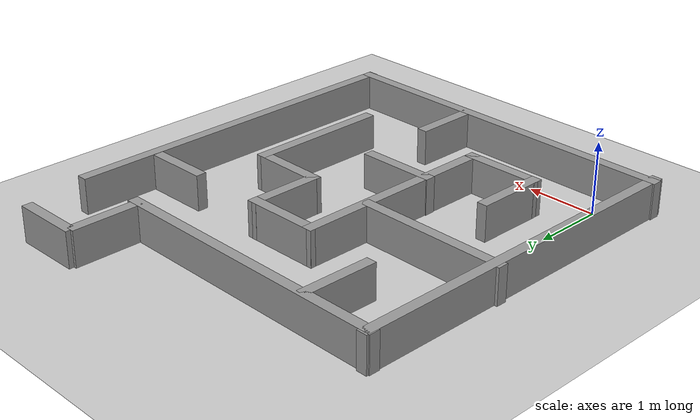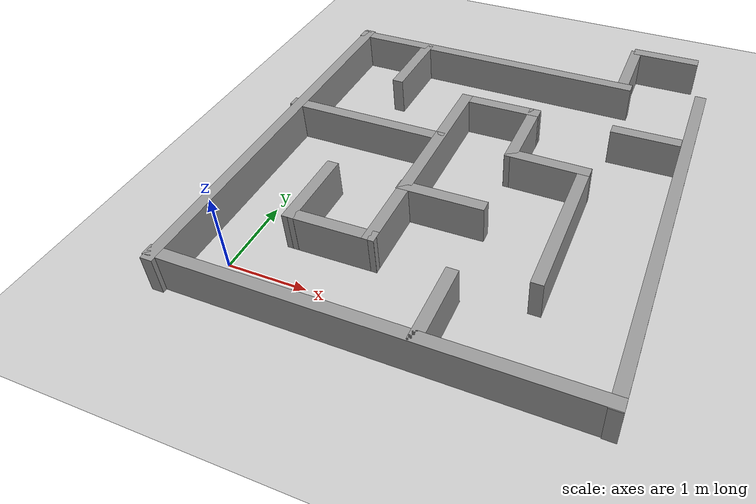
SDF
<sdf version='1.4'>
  <world name='default'>
    <!-- A global light source -->
    <include>
      <uri>model://sun</uri>
    </include>

    <!-- A ground plane -->
    <include>
      <uri>model://ground_plane</uri>
    </include>

    <physics type="ode">
      <real_time_update_rate>1000.0</real_time_update_rate>
      <max_step_size>0.001</max_step_size>
      <real_time_factor>1</real_time_factor>
      <ode>
        <solver>
          <type>quick</type>
          <iters>150</iters>
          <precon_iters>0</precon_iters>
          <sor>1.400000</sor>
          <use_dynamic_moi_rescaling>1</use_dynamic_moi_rescaling>
        </solver>
        <constraints>
          <cfm>0.00001</cfm>
          <erp>0.2</erp>
          <contact_max_correcting_vel>2000.000000</contact_max_correcting_vel>
          <contact_surface_layer>0.01000</contact_surface_layer>
        </constraints>
      </ode>
    </physics>

    <!-- Load world -->
    <include>
      <uri>model://short_maze</uri>
    </include>

    <scene>
      <ambient>0.4 0.4 0.4 1</ambient>
      <background>0.7 0.7 0.7 1</background>
      <shadows>true</shadows>
    </scene>

    <gui fullscreen='0'>
      <camera name='user_camera'>
        <pose>0.8 0.0 12.0 0 1.5708 0</pose>
        <view_controller>orbit</view_controller>
      </camera>
    </gui>
  </world>
</sdf>

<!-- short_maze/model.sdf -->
<sdf version='1.7'>
  <model name='short_maze'>
    <pose> 2.0 4.5 0 0 -0 1.57</pose>
    <link name='Wall_1'>
      <pose>-2.5 2.5 0 0 -0 0</pose>
      <self_collide>0</self_collide>
      <enable_wind>0</enable_wind>
      <kinematic>0</kinematic>
      <gravity>1</gravity>
      <inertial>
        <mass>1</mass>
        <pose>0 0 0 0 -0 0</pose>
        <inertia>
          <ixx>1</ixx>
          <ixy>0</ixy>
          <ixz>0</ixz>
          <iyy>1</iyy>
          <iyz>0</iyz>
          <izz>1</izz>
        </inertia>
      </inertial>
      <visual name='Wall_1_Visual'>
        <pose>0 0 0.25 0 -0 0</pose>
        <geometry>
          <box>
            <size>5.21009 0.15 0.5</size>
          </box>
        </geometry>
        <material>
          <script>
            <uri>file://media/materials/scripts/gazebo.material</uri>
            <name>Gazebo/Grey</name>
          </script>
          <ambient>1 1 1 1</ambient>
          <shader type='pixel'>
            <normal_map>__default__</normal_map>
          </shader>
          <diffuse>0.7 0.7 0.7 1</diffuse>
          <specular>0.01 0.01 0.01 1</specular>
          <emissive>0 0 0 1</emissive>
        </material>
        <meta>
          <layer>0</layer>
        </meta>
        <transparency>0</transparency>
        <cast_shadows>1</cast_shadows>
      </visual>
      <collision name='Wall_1_Collision'>
        <laser_retro>0</laser_retro>
        <max_contacts>10</max_contacts>
        <pose>0 0 0.25 0 -0 0</pose>
        <geometry>
          <box>
            <size>5.21009 0.15 0.5</size>
          </box>
        </geometry>
        <surface>
          <friction>
            <ode>
              <mu>1</mu>
              <mu2>1</mu2>
              <fdir1>0 0 0</fdir1>
              <slip1>0</slip1>
              <slip2>0</slip2>
            </ode>
            <torsional>
              <coefficient>1</coefficient>
              <patch_radius>0</patch_radius>
              <surface_radius>0</surface_radius>
              <use_patch_radius>1</use_patch_radius>
              <ode>
                <slip>0</slip>
              </ode>
            </torsional>
          </friction>
          <bounce>
            <restitution_coefficient>0</restitution_coefficient>
            <threshold>1e+06</threshold>
          </bounce>
          <contact>
            <collide_without_contact>0</collide_without_contact>
            <collide_without_contact_bitmask>1</collide_without_contact_bitmask>
            <collide_bitmask>1</collide_bitmask>
            <ode>
              <soft_cfm>0</soft_cfm>
              <soft_erp>0.2</soft_erp>
              <kp>1e+13</kp>
              <kd>1</kd>
              <max_vel>0.01</max_vel>
              <min_depth>0</min_depth>
            </ode>
            <bullet>
              <split_impulse>1</split_impulse>
              <split_impulse_penetration_threshold>-0.01</split_impulse_penetration_threshold>
              <soft_cfm>0</soft_cfm>
              <soft_erp>0.2</soft_erp>
              <kp>1e+13</kp>
              <kd>1</kd>
            </bullet>
          </contact>
        </surface>
      </collision>
    </link>
    <link name='Wall_10'>
      <pose>-4.53996 -0.559779 0 0 -0 0</pose>
      <self_collide>0</self_collide>
      <enable_wind>0</enable_wind>
      <kinematic>0</kinematic>
      <visual name='Wall_10_Visual'>
        <pose>0 0 0.25 0 -0 0</pose>
        <geometry>
          <box>
            <size>1 0.15 0.5</size>
          </box>
        </geometry>
        <material>
          <script>
            <uri>file://media/materials/scripts/gazebo.material</uri>
            <name>Gazebo/Grey</name>
          </script>
          <ambient>1 1 1 1</ambient>
          <shader type='pixel'/>
        </material>
        <meta>
          <layer>0</layer>
        </meta>
        <transparency>0</transparency>
        <cast_shadows>1</cast_shadows>
      </visual>
      <collision name='Wall_10_Collision'>
        <laser_retro>0</laser_retro>
        <max_contacts>10</max_contacts>
        <pose>0 0 0.25 0 -0 0</pose>
        <geometry>
          <box>
            <size>1 0.15 0.5</size>
          </box>
        </geometry>
        <surface>
          <friction>
            <ode>
              <mu>1</mu>
              <mu2>1</mu2>
              <fdir1>0 0 0</fdir1>
              <slip1>0</slip1>
              <slip2>0</slip2>
            </ode>
            <torsional>
              <coefficient>1</coefficient>
              <patch_radius>0</patch_radius>
              <surface_radius>0</surface_radius>
              <use_patch_radius>1</use_patch_radius>
              <ode>
                <slip>0</slip>
              </ode>
            </torsional>
          </friction>
          <bounce>
            <restitution_coefficient>0</restitution_coefficient>
            <threshold>1e+06</threshold>
          </bounce>
          <contact>
            <collide_without_contact>0</collide_without_contact>
            <collide_without_contact_bitmask>1</collide_without_contact_bitmask>
            <collide_bitmask>1</collide_bitmask>
            <ode>
              <soft_cfm>0</soft_cfm>
              <soft_erp>0.2</soft_erp>
              <kp>1e+13</kp>
              <kd>1</kd>
              <max_vel>0.01</max_vel>
              <min_depth>0</min_depth>
            </ode>
            <bullet>
              <split_impulse>1</split_impulse>
              <split_impulse_penetration_threshold>-0.01</split_impulse_penetration_threshold>
              <soft_cfm>0</soft_cfm>
              <soft_erp>0.2</soft_erp>
              <kp>1e+13</kp>
              <kd>1</kd>
            </bullet>
          </contact>
        </surface>
      </collision>
    </link>
    <link name='Wall_23'>
      <pose>-3.47496 1.46022 0 0 -0 3.14159</pose>
      <self_collide>0</self_collide>
      <enable_wind>0</enable_wind>
      <kinematic>0</kinematic>
      <visual name='Wall_23_Visual'>
        <pose>0 0 0.25 0 -0 0</pose>
        <geometry>
          <box>
            <size>1.05 0.15 0.5</size>
          </box>
        </geometry>
        <material>
          <script>
            <uri>file://media/materials/scripts/gazebo.material</uri>
            <name>Gazebo/Grey</name>
          </script>
          <ambient>1 1 1 1</ambient>
          <shader type='pixel'/>
        </material>
        <meta>
          <layer>0</layer>
        </meta>
        <transparency>0</transparency>
        <cast_shadows>1</cast_shadows>
      </visual>
      <collision name='Wall_23_Collision'>
        <laser_retro>0</laser_retro>
        <max_contacts>10</max_contacts>
        <pose>0 0 0.25 0 -0 0</pose>
        <geometry>
          <box>
            <size>1.05 0.15 0.5</size>
          </box>
        </geometry>
        <surface>
          <friction>
            <ode>
              <mu>1</mu>
              <mu2>1</mu2>
              <fdir1>0 0 0</fdir1>
              <slip1>0</slip1>
              <slip2>0</slip2>
            </ode>
            <torsional>
              <coefficient>1</coefficient>
              <patch_radius>0</patch_radius>
              <surface_radius>0</surface_radius>
              <use_patch_radius>1</use_patch_radius>
              <ode>
                <slip>0</slip>
              </ode>
            </torsional>
          </friction>
          <bounce>
            <restitution_coefficient>0</restitution_coefficient>
            <threshold>1e+06</threshold>
          </bounce>
          <contact>
            <collide_without_contact>0</collide_without_contact>
            <collide_without_contact_bitmask>1</collide_without_contact_bitmask>
            <collide_bitmask>1</collide_bitmask>
            <ode>
              <soft_cfm>0</soft_cfm>
              <soft_erp>0.2</soft_erp>
              <kp>1e+13</kp>
              <kd>1</kd>
              <max_vel>0.01</max_vel>
              <min_depth>0</min_depth>
            </ode>
            <bullet>
              <split_impulse>1</split_impulse>
              <split_impulse_penetration_threshold>-0.01</split_impulse_penetration_threshold>
              <soft_cfm>0</soft_cfm>
              <soft_erp>0.2</soft_erp>
              <kp>1e+13</kp>
              <kd>1</kd>
            </bullet>
          </contact>
        </surface>
      </collision>
    </link>
    <link name='Wall_25'>
      <pose>-3.91996 0.960222 0 0 0 -1.5608</pose>
      <self_collide>0</self_collide>
      <enable_wind>0</enable_wind>
      <kinematic>0</kinematic>
      <visual name='Wall_25_Visual'>
        <pose>0 0 0.25 0 -0 0</pose>
        <geometry>
          <box>
            <size>1.15005 0.15 0.5</size>
          </box>
        </geometry>
        <material>
          <script>
            <uri>file://media/materials/scripts/gazebo.material</uri>
            <name>Gazebo/Grey</name>
          </script>
          <ambient>1 1 1 1</ambient>
          <shader type='pixel'/>
        </material>
        <meta>
          <layer>0</layer>
        </meta>
        <transparency>0</transparency>
        <cast_shadows>1</cast_shadows>
      </visual>
      <collision name='Wall_25_Collision'>
        <laser_retro>0</laser_retro>
        <max_contacts>10</max_contacts>
        <pose>0 0 0.25 0 -0 0</pose>
        <geometry>
          <box>
            <size>1.15005 0.15 0.5</size>
          </box>
        </geometry>
        <surface>
          <friction>
            <ode>
              <mu>1</mu>
              <mu2>1</mu2>
              <fdir1>0 0 0</fdir1>
              <slip1>0</slip1>
              <slip2>0</slip2>
            </ode>
            <torsional>
              <coefficient>1</coefficient>
              <patch_radius>0</patch_radius>
              <surface_radius>0</surface_radius>
              <use_patch_radius>1</use_patch_radius>
              <ode>
                <slip>0</slip>
              </ode>
            </torsional>
          </friction>
          <bounce>
            <restitution_coefficient>0</restitution_coefficient>
            <threshold>1e+06</threshold>
          </bounce>
          <contact>
            <collide_without_contact>0</collide_without_contact>
            <collide_without_contact_bitmask>1</collide_without_contact_bitmask>
            <collide_bitmask>1</collide_bitmask>
            <ode>
              <soft_cfm>0</soft_cfm>
              <soft_erp>0.2</soft_erp>
              <kp>1e+13</kp>
              <kd>1</kd>
              <max_vel>0.01</max_vel>
              <min_depth>0</min_depth>
            </ode>
            <bullet>
              <split_impulse>1</split_impulse>
              <split_impulse_penetration_threshold>-0.01</split_impulse_penetration_threshold>
              <soft_cfm>0</soft_cfm>
              <soft_erp>0.2</soft_erp>
              <kp>1e+13</kp>
              <kd>1</kd>
            </bullet>
          </contact>
        </surface>
      </collision>
    </link>
    <link name='Wall_26'>
      <pose>-2.48996 0.460222 0 0 -0 0</pose>
      <self_collide>0</self_collide>
      <enable_wind>0</enable_wind>
      <kinematic>0</kinematic>
      <visual name='Wall_26_Visual'>
        <pose>0 0 0.25 0 -0 0</pose>
        <geometry>
          <box>
            <size>3 0.15 0.5</size>
          </box>
        </geometry>
        <material>
          <script>
            <uri>file://media/materials/scripts/gazebo.material</uri>
            <name>Gazebo/Grey</name>
          </script>
          <ambient>1 1 1 1</ambient>
          <shader type='pixel'/>
        </material>
        <meta>
          <layer>0</layer>
        </meta>
        <transparency>0</transparency>
        <cast_shadows>1</cast_shadows>
      </visual>
      <collision name='Wall_26_Collision'>
        <laser_retro>0</laser_retro>
        <max_contacts>10</max_contacts>
        <pose>0 0 0.25 0 -0 0</pose>
        <geometry>
          <box>
            <size>3 0.15 0.5</size>
          </box>
        </geometry>
        <surface>
          <friction>
            <ode>
              <mu>1</mu>
              <mu2>1</mu2>
              <fdir1>0 0 0</fdir1>
              <slip1>0</slip1>
              <slip2>0</slip2>
            </ode>
            <torsional>
              <coefficient>1</coefficient>
              <patch_radius>0</patch_radius>
              <surface_radius>0</surface_radius>
              <use_patch_radius>1</use_patch_radius>
              <ode>
                <slip>0</slip>
              </ode>
            </torsional>
          </friction>
          <bounce>
            <restitution_coefficient>0</restitution_coefficient>
            <threshold>1e+06</threshold>
          </bounce>
          <contact>
            <collide_without_contact>0</collide_without_contact>
            <collide_without_contact_bitmask>1</collide_without_contact_bitmask>
            <collide_bitmask>1</collide_bitmask>
            <ode>
              <soft_cfm>0</soft_cfm>
              <soft_erp>0.2</soft_erp>
              <kp>1e+13</kp>
              <kd>1</kd>
              <max_vel>0.01</max_vel>
              <min_depth>0</min_depth>
            </ode>
            <bullet>
              <split_impulse>1</split_impulse>
              <split_impulse_penetration_threshold>-0.01</split_impulse_penetration_threshold>
              <soft_cfm>0</soft_cfm>
              <soft_erp>0.2</soft_erp>
              <kp>1e+13</kp>
              <kd>1</kd>
            </bullet>
          </contact>
        </surface>
      </collision>
    </link>
    <link name='Wall_27'>
      <pose>-1.05996 -0.024778 0 0 0 -1.56049</pose>
      <self_collide>0</self_collide>
      <enable_wind>0</enable_wind>
      <kinematic>0</kinematic>
      <visual name='Wall_27_Visual'>
        <pose>0 0 0.25 0 -0 0</pose>
        <geometry>
          <box>
            <size>1.12005 0.15 0.5</size>
          </box>
        </geometry>
        <material>
          <script>
            <uri>file://media/materials/scripts/gazebo.material</uri>
            <name>Gazebo/Grey</name>
          </script>
          <ambient>1 1 1 1</ambient>
          <shader type='pixel'/>
        </material>
        <meta>
          <layer>0</layer>
        </meta>
        <transparency>0</transparency>
        <cast_shadows>1</cast_shadows>
      </visual>
      <collision name='Wall_27_Collision'>
        <laser_retro>0</laser_retro>
        <max_contacts>10</max_contacts>
        <pose>0 0 0.25 0 -0 0</pose>
        <geometry>
          <box>
            <size>1.12005 0.15 0.5</size>
          </box>
        </geometry>
        <surface>
          <friction>
            <ode>
              <mu>1</mu>
              <mu2>1</mu2>
              <fdir1>0 0 0</fdir1>
              <slip1>0</slip1>
              <slip2>0</slip2>
            </ode>
            <torsional>
              <coefficient>1</coefficient>
              <patch_radius>0</patch_radius>
              <surface_radius>0</surface_radius>
              <use_patch_radius>1</use_patch_radius>
              <ode>
                <slip>0</slip>
              </ode>
            </torsional>
          </friction>
          <bounce>
            <restitution_coefficient>0</restitution_coefficient>
            <threshold>1e+06</threshold>
          </bounce>
          <contact>
            <collide_without_contact>0</collide_without_contact>
            <collide_without_contact_bitmask>1</collide_without_contact_bitmask>
            <collide_bitmask>1</collide_bitmask>
            <ode>
              <soft_cfm>0</soft_cfm>
              <soft_erp>0.2</soft_erp>
              <kp>1e+13</kp>
              <kd>1</kd>
              <max_vel>0.01</max_vel>
              <min_depth>0</min_depth>
            </ode>
            <bullet>
              <split_impulse>1</split_impulse>
              <split_impulse_penetration_threshold>-0.01</split_impulse_penetration_threshold>
              <soft_cfm>0</soft_cfm>
              <soft_erp>0.2</soft_erp>
              <kp>1e+13</kp>
              <kd>1</kd>
            </bullet>
          </contact>
        </surface>
      </collision>
    </link>
    <link name='Wall_28'>
      <pose>-1.51996 -0.509778 0 0 -0 3.14159</pose>
      <self_collide>0</self_collide>
      <enable_wind>0</enable_wind>
      <kinematic>0</kinematic>
      <visual name='Wall_28_Visual'>
        <pose>0 0 0.25 0 -0 0</pose>
        <geometry>
          <box>
            <size>1.08 0.15 0.5</size>
          </box>
        </geometry>
        <material>
          <script>
            <uri>file://media/materials/scripts/gazebo.material</uri>
            <name>Gazebo/Grey</name>
          </script>
          <ambient>1 1 1 1</ambient>
          <shader type='pixel'/>
        </material>
        <meta>
          <layer>0</layer>
        </meta>
        <transparency>0</transparency>
        <cast_shadows>1</cast_shadows>
      </visual>
      <collision name='Wall_28_Collision'>
        <laser_retro>0</laser_retro>
        <max_contacts>10</max_contacts>
        <pose>0 0 0.25 0 -0 0</pose>
        <geometry>
          <box>
            <size>1.08 0.15 0.5</size>
          </box>
        </geometry>
        <surface>
          <friction>
            <ode>
              <mu>1</mu>
              <mu2>1</mu2>
              <fdir1>0 0 0</fdir1>
              <slip1>0</slip1>
              <slip2>0</slip2>
            </ode>
            <torsional>
              <coefficient>1</coefficient>
              <patch_radius>0</patch_radius>
              <surface_radius>0</surface_radius>
              <use_patch_radius>1</use_patch_radius>
              <ode>
                <slip>0</slip>
              </ode>
            </torsional>
          </friction>
          <bounce>
            <restitution_coefficient>0</restitution_coefficient>
            <threshold>1e+06</threshold>
          </bounce>
          <contact>
            <collide_without_contact>0</collide_without_contact>
            <collide_without_contact_bitmask>1</collide_without_contact_bitmask>
            <collide_bitmask>1</collide_bitmask>
            <ode>
              <soft_cfm>0</soft_cfm>
              <soft_erp>0.2</soft_erp>
              <kp>1e+13</kp>
              <kd>1</kd>
              <max_vel>0.01</max_vel>
              <min_depth>0</min_depth>
            </ode>
            <bullet>
              <split_impulse>1</split_impulse>
              <split_impulse_penetration_threshold>-0.01</split_impulse_penetration_threshold>
              <soft_cfm>0</soft_cfm>
              <soft_erp>0.2</soft_erp>
              <kp>1e+13</kp>
              <kd>1</kd>
            </bullet>
          </contact>
        </surface>
      </collision>
    </link>
    <link name='Wall_29'>
      <pose>-1.98996 -0.974778 0 0 0 -1.58155</pose>
      <self_collide>0</self_collide>
      <enable_wind>0</enable_wind>
      <kinematic>0</kinematic>
      <visual name='Wall_29_Visual'>
        <pose>0 0 0.25 0 -0 0</pose>
        <geometry>
          <box>
            <size>1.08005 0.15 0.5</size>
          </box>
        </geometry>
        <material>
          <script>
            <uri>file://media/materials/scripts/gazebo.material</uri>
            <name>Gazebo/Grey</name>
          </script>
          <ambient>1 1 1 1</ambient>
          <shader type='pixel'/>
        </material>
        <meta>
          <layer>0</layer>
        </meta>
        <transparency>0</transparency>
        <cast_shadows>1</cast_shadows>
      </visual>
      <collision name='Wall_29_Collision'>
        <laser_retro>0</laser_retro>
        <max_contacts>10</max_contacts>
        <pose>0 0 0.25 0 -0 0</pose>
        <geometry>
          <box>
            <size>1.08005 0.15 0.5</size>
          </box>
        </geometry>
        <surface>
          <friction>
            <ode>
              <mu>1</mu>
              <mu2>1</mu2>
              <fdir1>0 0 0</fdir1>
              <slip1>0</slip1>
              <slip2>0</slip2>
            </ode>
            <torsional>
              <coefficient>1</coefficient>
              <patch_radius>0</patch_radius>
              <surface_radius>0</surface_radius>
              <use_patch_radius>1</use_patch_radius>
              <ode>
                <slip>0</slip>
              </ode>
            </torsional>
          </friction>
          <bounce>
            <restitution_coefficient>0</restitution_coefficient>
            <threshold>1e+06</threshold>
          </bounce>
          <contact>
            <collide_without_contact>0</collide_without_contact>
            <collide_without_contact_bitmask>1</collide_without_contact_bitmask>
            <collide_bitmask>1</collide_bitmask>
            <ode>
              <soft_cfm>0</soft_cfm>
              <soft_erp>0.2</soft_erp>
              <kp>1e+13</kp>
              <kd>1</kd>
              <max_vel>0.01</max_vel>
              <min_depth>0</min_depth>
            </ode>
            <bullet>
              <split_impulse>1</split_impulse>
              <split_impulse_penetration_threshold>-0.01</split_impulse_penetration_threshold>
              <soft_cfm>0</soft_cfm>
              <soft_erp>0.2</soft_erp>
              <kp>1e+13</kp>
              <kd>1</kd>
            </bullet>
          </contact>
        </surface>
      </collision>
    </link>
    <link name='Wall_3'>
      <pose>-4.97496 0.005222 0 0 -0 1.5708</pose>
      <self_collide>0</self_collide>
      <enable_wind>0</enable_wind>
      <kinematic>0</kinematic>
      <visual name='Wall_3_Visual'>
        <pose>0 0 0.25 0 -0 0</pose>
        <geometry>
          <box>
            <size>5.18 0.15 0.5</size>
          </box>
        </geometry>
        <material>
          <script>
            <uri>file://media/materials/scripts/gazebo.material</uri>
            <name>Gazebo/Grey</name>
          </script>
          <ambient>1 1 1 1</ambient>
          <shader type='pixel'/>
        </material>
        <meta>
          <layer>0</layer>
        </meta>
        <transparency>0</transparency>
        <cast_shadows>1</cast_shadows>
      </visual>
      <collision name='Wall_3_Collision'>
        <laser_retro>0</laser_retro>
        <max_contacts>10</max_contacts>
        <pose>0 0 0.25 0 -0 0</pose>
        <geometry>
          <box>
            <size>5.18 0.15 0.5</size>
          </box>
        </geometry>
        <surface>
          <friction>
            <ode>
              <mu>1</mu>
              <mu2>1</mu2>
              <fdir1>0 0 0</fdir1>
              <slip1>0</slip1>
              <slip2>0</slip2>
            </ode>
            <torsional>
              <coefficient>1</coefficient>
              <patch_radius>0</patch_radius>
              <surface_radius>0</surface_radius>
              <use_patch_radius>1</use_patch_radius>
              <ode>
                <slip>0</slip>
              </ode>
            </torsional>
          </friction>
          <bounce>
            <restitution_coefficient>0</restitution_coefficient>
            <threshold>1e+06</threshold>
          </bounce>
          <contact>
            <collide_without_contact>0</collide_without_contact>
            <collide_without_contact_bitmask>1</collide_without_contact_bitmask>
            <collide_bitmask>1</collide_bitmask>
            <ode>
              <soft_cfm>0</soft_cfm>
              <soft_erp>0.2</soft_erp>
              <kp>1e+13</kp>
              <kd>1</kd>
              <max_vel>0.01</max_vel>
              <min_depth>0</min_depth>
            </ode>
            <bullet>
              <split_impulse>1</split_impulse>
              <split_impulse_penetration_threshold>-0.01</split_impulse_penetration_threshold>
              <soft_cfm>0</soft_cfm>
              <soft_erp>0.2</soft_erp>
              <kp>1e+13</kp>
              <kd>1</kd>
            </bullet>
          </contact>
        </surface>
      </collision>
    </link>
    <link name='Wall_30'>
      <pose>-2.91996 -1.43978 0 0 -0 3.14159</pose>
      <self_collide>0</self_collide>
      <enable_wind>0</enable_wind>
      <kinematic>0</kinematic>
      <visual name='Wall_30_Visual'>
        <pose>0 0 0.25 0 -0 0</pose>
        <geometry>
          <box>
            <size>2 0.15 0.5</size>
          </box>
        </geometry>
        <material>
          <script>
            <uri>file://media/materials/scripts/gazebo.material</uri>
            <name>Gazebo/Grey</name>
          </script>
          <ambient>1 1 1 1</ambient>
          <shader type='pixel'/>
        </material>
        <meta>
          <layer>0</layer>
        </meta>
        <transparency>0</transparency>
        <cast_shadows>1</cast_shadows>
      </visual>
      <collision name='Wall_30_Collision'>
        <laser_retro>0</laser_retro>
        <max_contacts>10</max_contacts>
        <pose>0 0 0.25 0 -0 0</pose>
        <geometry>
          <box>
            <size>2 0.15 0.5</size>
          </box>
        </geometry>
        <surface>
          <friction>
            <ode>
              <mu>1</mu>
              <mu2>1</mu2>
              <fdir1>0 0 0</fdir1>
              <slip1>0</slip1>
              <slip2>0</slip2>
            </ode>
            <torsional>
              <coefficient>1</coefficient>
              <patch_radius>0</patch_radius>
              <surface_radius>0</surface_radius>
              <use_patch_radius>1</use_patch_radius>
              <ode>
                <slip>0</slip>
              </ode>
            </torsional>
          </friction>
          <bounce>
            <restitution_coefficient>0</restitution_coefficient>
            <threshold>1e+06</threshold>
          </bounce>
          <contact>
            <collide_without_contact>0</collide_without_contact>
            <collide_without_contact_bitmask>1</collide_without_contact_bitmask>
            <collide_bitmask>1</collide_bitmask>
            <ode>
              <soft_cfm>0</soft_cfm>
              <soft_erp>0.2</soft_erp>
              <kp>1e+13</kp>
              <kd>1</kd>
              <max_vel>0.01</max_vel>
              <min_depth>0</min_depth>
            </ode>
            <bullet>
              <split_impulse>1</split_impulse>
              <split_impulse_penetration_threshold>-0.01</split_impulse_penetration_threshold>
              <soft_cfm>0</soft_cfm>
              <soft_erp>0.2</soft_erp>
              <kp>1e+13</kp>
              <kd>1</kd>
            </bullet>
          </contact>
        </surface>
      </collision>
    </link>
    <link name='Wall_32'>
      <pose>-3.01996 -0.004778 0 0 0 -1.56027</pose>
      <self_collide>0</self_collide>
      <enable_wind>0</enable_wind>
      <kinematic>0</kinematic>
      <visual name='Wall_32_Visual'>
        <pose>0 0 0.25 0 -0 0</pose>
        <geometry>
          <box>
            <size>1.10005 0.15 0.5</size>
          </box>
        </geometry>
        <material>
          <script>
            <uri>file://media/materials/scripts/gazebo.material</uri>
            <name>Gazebo/Grey</name>
          </script>
          <ambient>1 1 1 1</ambient>
          <shader type='pixel'/>
        </material>
        <meta>
          <layer>0</layer>
        </meta>
        <transparency>0</transparency>
        <cast_shadows>1</cast_shadows>
      </visual>
      <collision name='Wall_32_Collision'>
        <laser_retro>0</laser_retro>
        <max_contacts>10</max_contacts>
        <pose>0 0 0.25 0 -0 0</pose>
        <geometry>
          <box>
            <size>1.10005 0.15 0.5</size>
          </box>
        </geometry>
        <surface>
          <friction>
            <ode>
              <mu>1</mu>
              <mu2>1</mu2>
              <fdir1>0 0 0</fdir1>
              <slip1>0</slip1>
              <slip2>0</slip2>
            </ode>
            <torsional>
              <coefficient>1</coefficient>
              <patch_radius>0</patch_radius>
              <surface_radius>0</surface_radius>
              <use_patch_radius>1</use_patch_radius>
              <ode>
                <slip>0</slip>
              </ode>
            </torsional>
          </friction>
          <bounce>
            <restitution_coefficient>0</restitution_coefficient>
            <threshold>1e+06</threshold>
          </bounce>
          <contact>
            <collide_without_contact>0</collide_without_contact>
            <collide_without_contact_bitmask>1</collide_without_contact_bitmask>
            <collide_bitmask>1</collide_bitmask>
            <ode>
              <soft_cfm>0</soft_cfm>
              <soft_erp>0.2</soft_erp>
              <kp>1e+13</kp>
              <kd>1</kd>
              <max_vel>0.01</max_vel>
              <min_depth>0</min_depth>
            </ode>
            <bullet>
              <split_impulse>1</split_impulse>
              <split_impulse_penetration_threshold>-0.01</split_impulse_penetration_threshold>
              <soft_cfm>0</soft_cfm>
              <soft_erp>0.2</soft_erp>
              <kp>1e+13</kp>
              <kd>1</kd>
            </bullet>
          </contact>
        </surface>
      </collision>
    </link>
    <link name='Wall_34'>
      <pose>-1.98496 1.51522 0 0 0 -1.5708</pose>
      <self_collide>0</self_collide>
      <enable_wind>0</enable_wind>
      <kinematic>0</kinematic>
      <visual name='Wall_34_Visual'>
        <pose>0 0 0.25 0 -0 0</pose>
        <geometry>
          <box>
            <size>2.2 0.15 0.5</size>
          </box>
        </geometry>
        <material>
          <script>
            <uri>file://media/materials/scripts/gazebo.material</uri>
            <name>Gazebo/Grey</name>
          </script>
          <ambient>1 1 1 1</ambient>
          <shader type='pixel'/>
        </material>
        <meta>
          <layer>0</layer>
        </meta>
        <transparency>0</transparency>
        <cast_shadows>1</cast_shadows>
      </visual>
      <collision name='Wall_34_Collision'>
        <laser_retro>0</laser_retro>
        <max_contacts>10</max_contacts>
        <pose>0 0 0.25 0 -0 0</pose>
        <geometry>
          <box>
            <size>2.2 0.15 0.5</size>
          </box>
        </geometry>
        <surface>
          <friction>
            <ode>
              <mu>1</mu>
              <mu2>1</mu2>
              <fdir1>0 0 0</fdir1>
              <slip1>0</slip1>
              <slip2>0</slip2>
            </ode>
            <torsional>
              <coefficient>1</coefficient>
              <patch_radius>0</patch_radius>
              <surface_radius>0</surface_radius>
              <use_patch_radius>1</use_patch_radius>
              <ode>
                <slip>0</slip>
              </ode>
            </torsional>
          </friction>
          <bounce>
            <restitution_coefficient>0</restitution_coefficient>
            <threshold>1e+06</threshold>
          </bounce>
          <contact>
            <collide_without_contact>0</collide_without_contact>
            <collide_without_contact_bitmask>1</collide_without_contact_bitmask>
            <collide_bitmask>1</collide_bitmask>
            <ode>
              <soft_cfm>0</soft_cfm>
              <soft_erp>0.2</soft_erp>
              <kp>1e+13</kp>
              <kd>1</kd>
              <max_vel>0.01</max_vel>
              <min_depth>0</min_depth>
            </ode>
            <bullet>
              <split_impulse>1</split_impulse>
              <split_impulse_penetration_threshold>-0.01</split_impulse_penetration_threshold>
              <soft_cfm>0</soft_cfm>
              <soft_erp>0.2</soft_erp>
              <kp>1e+13</kp>
              <kd>1</kd>
            </bullet>
          </contact>
        </surface>
      </collision>
    </link>
    <link name='Wall_3_clone'>
      <pose>-0 0.5 0 0 -0 1.57</pose>
      <self_collide>0</self_collide>
      <enable_wind>0</enable_wind>
      <kinematic>0</kinematic>
      <gravity>1</gravity>
      <inertial>
        <mass>1</mass>
        <pose>0 0 0 0 -0 0</pose>
        <inertia>
          <ixx>1</ixx>
          <ixy>0</ixy>
          <ixz>0</ixz>
          <iyy>1</iyy>
          <iyz>0</iyz>
          <izz>1</izz>
        </inertia>
      </inertial>
      <visual name='Wall_3_Visual'>
        <pose>0 0 0.25 0 -0 0</pose>
        <geometry>
          <box>
            <size>4.18 0.15 0.5</size>
          </box>
        </geometry>
        <material>
          <script>
            <uri>file://media/materials/scripts/gazebo.material</uri>
            <name>Gazebo/Grey</name>
          </script>
          <ambient>1 1 1 1</ambient>
          <shader type='pixel'>
            <normal_map>__default__</normal_map>
          </shader>
          <diffuse>0.7 0.7 0.7 1</diffuse>
          <specular>0.01 0.01 0.01 1</specular>
          <emissive>0 0 0 1</emissive>
        </material>
        <meta>
          <layer>0</layer>
        </meta>
        <transparency>0</transparency>
        <cast_shadows>1</cast_shadows>
      </visual>
      <collision name='Wall_3_Collision'>
        <laser_retro>0</laser_retro>
        <max_contacts>10</max_contacts>
        <pose>0 0 0.25 0 -0 0</pose>
        <geometry>
          <box>
            <size>4.18 0.15 0.5</size>
          </box>
        </geometry>
        <surface>
          <friction>
            <ode>
              <mu>1</mu>
              <mu2>1</mu2>
              <fdir1>0 0 0</fdir1>
              <slip1>0</slip1>
              <slip2>0</slip2>
            </ode>
            <torsional>
              <coefficient>1</coefficient>
              <patch_radius>0</patch_radius>
              <surface_radius>0</surface_radius>
              <use_patch_radius>1</use_patch_radius>
              <ode>
                <slip>0</slip>
              </ode>
            </torsional>
          </friction>
          <bounce>
            <restitution_coefficient>0</restitution_coefficient>
            <threshold>1e+06</threshold>
          </bounce>
          <contact>
            <collide_without_contact>0</collide_without_contact>
            <collide_without_contact_bitmask>1</collide_without_contact_bitmask>
            <collide_bitmask>1</collide_bitmask>
            <ode>
              <soft_cfm>0</soft_cfm>
              <soft_erp>0.2</soft_erp>
              <kp>1e+13</kp>
              <kd>1</kd>
              <max_vel>0.01</max_vel>
              <min_depth>0</min_depth>
            </ode>
            <bullet>
              <split_impulse>1</split_impulse>
              <split_impulse_penetration_threshold>-0.01</split_impulse_penetration_threshold>
              <soft_cfm>0</soft_cfm>
              <soft_erp>0.2</soft_erp>
              <kp>1e+13</kp>
              <kd>1</kd>
            </bullet>
          </contact>
        </surface>
      </collision>
    </link>
    <link name='Wall_51'>
      <pose>-0.5 1.5 0 0 -0 3.1306</pose>
      <self_collide>0</self_collide>
      <enable_wind>0</enable_wind>
      <kinematic>0</kinematic>
      <gravity>1</gravity>
      <inertial>
        <mass>1</mass>
        <pose>0 0 0 0 -0 0</pose>
        <inertia>
          <ixx>1</ixx>
          <ixy>0</ixy>
          <ixz>0</ixz>
          <iyy>1</iyy>
          <iyz>0</iyz>
          <izz>1</izz>
        </inertia>
      </inertial>
      <visual name='Wall_51_Visual'>
        <pose>0 0 0.25 0 -0 0</pose>
        <geometry>
          <box>
            <size>1.06 0.15 0.5</size>
          </box>
        </geometry>
        <material>
          <script>
            <uri>file://media/materials/scripts/gazebo.material</uri>
            <name>Gazebo/Grey</name>
          </script>
          <ambient>1 1 1 1</ambient>
          <shader type='pixel'>
            <normal_map>__default__</normal_map>
          </shader>
          <diffuse>0.7 0.7 0.7 1</diffuse>
          <specular>0.01 0.01 0.01 1</specular>
          <emissive>0 0 0 1</emissive>
        </material>
        <meta>
          <layer>0</layer>
        </meta>
        <transparency>0</transparency>
        <cast_shadows>1</cast_shadows>
      </visual>
      <collision name='Wall_51_Collision'>
        <laser_retro>0</laser_retro>
        <max_contacts>10</max_contacts>
        <pose>0 0 0.25 0 -0 0</pose>
        <geometry>
          <box>
            <size>1.06 0.15 0.5</size>
          </box>
        </geometry>
        <surface>
          <friction>
            <ode>
              <mu>1</mu>
              <mu2>1</mu2>
              <fdir1>0 0 0</fdir1>
              <slip1>0</slip1>
              <slip2>0</slip2>
            </ode>
            <torsional>
              <coefficient>1</coefficient>
              <patch_radius>0</patch_radius>
              <surface_radius>0</surface_radius>
              <use_patch_radius>1</use_patch_radius>
              <ode>
                <slip>0</slip>
              </ode>
            </torsional>
          </friction>
          <bounce>
            <restitution_coefficient>0</restitution_coefficient>
            <threshold>1e+06</threshold>
          </bounce>
          <contact>
            <collide_without_contact>0</collide_without_contact>
            <collide_without_contact_bitmask>1</collide_without_contact_bitmask>
            <collide_bitmask>1</collide_bitmask>
            <ode>
              <soft_cfm>0</soft_cfm>
              <soft_erp>0.2</soft_erp>
              <kp>1e+13</kp>
              <kd>1</kd>
              <max_vel>0.01</max_vel>
              <min_depth>0</min_depth>
            </ode>
            <bullet>
              <split_impulse>1</split_impulse>
              <split_impulse_penetration_threshold>-0.01</split_impulse_penetration_threshold>
              <soft_cfm>0</soft_cfm>
              <soft_erp>0.2</soft_erp>
              <kp>1e+13</kp>
              <kd>1</kd>
            </bullet>
          </contact>
        </surface>
      </collision>
    </link>
    <link name='Wall_55'>
      <pose>0.498819 -1.45978 0 0 -0 3.14159</pose>
      <self_collide>0</self_collide>
      <enable_wind>0</enable_wind>
      <kinematic>0</kinematic>
      <inertial>
        <inertia>
          <ixx>0</ixx>
          <ixy>0</ixy>
          <ixz>0</ixz>
          <iyy>0</iyy>
          <iyz>0</iyz>
          <izz>0</izz>
        </inertia>
        <mass>0</mass>
        <pose>0 0 0 0 -0 0</pose>
      </inertial>
      <visual name='Wall_55_Visual'>
        <pose>0 0 0.25 0 -0 0</pose>
        <geometry>
          <box>
            <size>1.00142 0.15 0.5</size>
          </box>
        </geometry>
        <material>
          <script>
            <uri>file://media/materials/scripts/gazebo.material</uri>
            <name>Gazebo/Grey</name>
          </script>
          <ambient>1 1 1 1</ambient>
          <shader type='pixel'/>
        </material>
        <meta>
          <layer>0</layer>
        </meta>
        <transparency>0</transparency>
        <cast_shadows>1</cast_shadows>
      </visual>
      <collision name='Wall_55_Collision'>
        <laser_retro>0</laser_retro>
        <max_contacts>10</max_contacts>
        <pose>0 0 0.25 0 -0 0</pose>
        <geometry>
          <box>
            <size>1.00142 0.15 0.5</size>
          </box>
        </geometry>
        <surface>
          <friction>
            <ode>
              <mu>1</mu>
              <mu2>1</mu2>
              <fdir1>0 0 0</fdir1>
              <slip1>0</slip1>
              <slip2>0</slip2>
            </ode>
            <torsional>
              <coefficient>1</coefficient>
              <patch_radius>0</patch_radius>
              <surface_radius>0</surface_radius>
              <use_patch_radius>1</use_patch_radius>
              <ode>
                <slip>0</slip>
              </ode>
            </torsional>
          </friction>
          <bounce>
            <restitution_coefficient>0</restitution_coefficient>
            <threshold>1e+06</threshold>
          </bounce>
          <contact>
            <collide_without_contact>0</collide_without_contact>
            <collide_without_contact_bitmask>1</collide_without_contact_bitmask>
            <collide_bitmask>1</collide_bitmask>
            <ode>
              <soft_cfm>0</soft_cfm>
              <soft_erp>0.2</soft_erp>
              <kp>1e+13</kp>
              <kd>1</kd>
              <max_vel>0.01</max_vel>
              <min_depth>0</min_depth>
            </ode>
            <bullet>
              <split_impulse>1</split_impulse>
              <split_impulse_penetration_threshold>-0.01</split_impulse_penetration_threshold>
              <soft_cfm>0</soft_cfm>
              <soft_erp>0.2</soft_erp>
              <kp>1e+13</kp>
              <kd>1</kd>
            </bullet>
          </contact>
        </surface>
      </collision>
    </link>
    <link name='Wall_58'>
      <pose>1.00004 -1.88978 0 0 0 -1.55798</pose>
      <self_collide>0</self_collide>
      <enable_wind>0</enable_wind>
      <kinematic>0</kinematic>
      <visual name='Wall_58_Visual'>
        <pose>0 0 0.25 0 -0 0</pose>
        <geometry>
          <box>
            <size>0.93 0.15 0.5</size>
          </box>
        </geometry>
        <material>
          <script>
            <uri>file://media/materials/scripts/gazebo.material</uri>
            <name>Gazebo/Grey</name>
          </script>
          <ambient>1 1 1 1</ambient>
          <shader type='pixel'/>
        </material>
        <meta>
          <layer>0</layer>
        </meta>
        <transparency>0</transparency>
        <cast_shadows>1</cast_shadows>
      </visual>
      <collision name='Wall_58_Collision'>
        <laser_retro>0</laser_retro>
        <max_contacts>10</max_contacts>
        <pose>0 0 0.25 0 -0 0</pose>
        <geometry>
          <box>
            <size>0.93 0.15 0.5</size>
          </box>
        </geometry>
        <surface>
          <friction>
            <ode>
              <mu>1</mu>
              <mu2>1</mu2>
              <fdir1>0 0 0</fdir1>
              <slip1>0</slip1>
              <slip2>0</slip2>
            </ode>
            <torsional>
              <coefficient>1</coefficient>
              <patch_radius>0</patch_radius>
              <surface_radius>0</surface_radius>
              <use_patch_radius>1</use_patch_radius>
              <ode>
                <slip>0</slip>
              </ode>
            </torsional>
          </friction>
          <bounce>
            <restitution_coefficient>0</restitution_coefficient>
            <threshold>1e+06</threshold>
          </bounce>
          <contact>
            <collide_without_contact>0</collide_without_contact>
            <collide_without_contact_bitmask>1</collide_without_contact_bitmask>
            <collide_bitmask>1</collide_bitmask>
            <ode>
              <soft_cfm>0</soft_cfm>
              <soft_erp>0.2</soft_erp>
              <kp>1e+13</kp>
              <kd>1</kd>
              <max_vel>0.01</max_vel>
              <min_depth>0</min_depth>
            </ode>
            <bullet>
              <split_impulse>1</split_impulse>
              <split_impulse_penetration_threshold>-0.01</split_impulse_penetration_threshold>
              <soft_cfm>0</soft_cfm>
              <soft_erp>0.2</soft_erp>
              <kp>1e+13</kp>
              <kd>1</kd>
            </bullet>
          </contact>
        </surface>
      </collision>
    </link>
    <link name='Wall_60'>
      <pose>-1.01889 -1.98893 0 0 0 -1.55728</pose>
      <self_collide>0</self_collide>
      <enable_wind>0</enable_wind>
      <kinematic>0</kinematic>
      <visual name='Wall_60_Visual'>
        <pose>0 0 0.25 0 -0 0</pose>
        <geometry>
          <box>
            <size>0.890068 0.15 0.5</size>
          </box>
        </geometry>
        <material>
          <script>
            <uri>file://media/materials/scripts/gazebo.material</uri>
            <name>Gazebo/Grey</name>
          </script>
          <ambient>1 1 1 1</ambient>
          <shader type='pixel'/>
        </material>
        <meta>
          <layer>0</layer>
        </meta>
        <transparency>0</transparency>
        <cast_shadows>1</cast_shadows>
      </visual>
      <collision name='Wall_60_Collision'>
        <laser_retro>0</laser_retro>
        <max_contacts>10</max_contacts>
        <pose>0 0 0.25 0 -0 0</pose>
        <geometry>
          <box>
            <size>0.890068 0.15 0.5</size>
          </box>
        </geometry>
        <surface>
          <friction>
            <ode>
              <mu>1</mu>
              <mu2>1</mu2>
              <fdir1>0 0 0</fdir1>
              <slip1>0</slip1>
              <slip2>0</slip2>
            </ode>
            <torsional>
              <coefficient>1</coefficient>
              <patch_radius>0</patch_radius>
              <surface_radius>0</surface_radius>
              <use_patch_radius>1</use_patch_radius>
              <ode>
                <slip>0</slip>
              </ode>
            </torsional>
          </friction>
          <bounce>
            <restitution_coefficient>0</restitution_coefficient>
            <threshold>1e+06</threshold>
          </bounce>
          <contact>
            <collide_without_contact>0</collide_without_contact>
            <collide_without_contact_bitmask>1</collide_without_contact_bitmask>
            <collide_bitmask>1</collide_bitmask>
            <ode>
              <soft_cfm>0</soft_cfm>
              <soft_erp>0.2</soft_erp>
              <kp>1e+13</kp>
              <kd>1</kd>
              <max_vel>0.01</max_vel>
              <min_depth>0</min_depth>
            </ode>
            <bullet>
              <split_impulse>1</split_impulse>
              <split_impulse_penetration_threshold>-0.01</split_impulse_penetration_threshold>
              <soft_cfm>0</soft_cfm>
              <soft_erp>0.2</soft_erp>
              <kp>1e+13</kp>
              <kd>1</kd>
            </bullet>
          </contact>
        </surface>
      </collision>
    </link>
    <link name='Wall_65'>
      <pose>-2.46962 -2.51258 0 0 0 -0.001119</pose>
      <self_collide>0</self_collide>
      <enable_wind>0</enable_wind>
      <kinematic>0</kinematic>
      <inertial>
        <inertia>
          <ixx>0</ixx>
          <ixy>0</ixy>
          <ixz>0</ixz>
          <iyy>0</iyy>
          <iyz>0</iyz>
          <izz>0</izz>
        </inertia>
        <mass>0</mass>
        <pose>0 0 0 0 -0 0</pose>
      </inertial>
      <gravity>1</gravity>
      <visual name='Wall_65_Visual'>
        <pose>0 0 0.25 0 -0 0</pose>
        <geometry>
          <box>
            <size>5.18 0.15 0.5</size>
          </box>
        </geometry>
        <material>
          <script>
            <uri>file://media/materials/scripts/gazebo.material</uri>
            <name>Gazebo/Grey</name>
          </script>
          <ambient>1 1 1 1</ambient>
          <shader type='pixel'>
            <normal_map>__default__</normal_map>
          </shader>
          <diffuse>0.7 0.7 0.7 1</diffuse>
          <specular>0.01 0.01 0.01 1</specular>
          <emissive>0 0 0 1</emissive>
        </material>
        <meta>
          <layer>0</layer>
        </meta>
        <transparency>0</transparency>
        <cast_shadows>1</cast_shadows>
      </visual>
      <collision name='Wall_65_Collision'>
        <laser_retro>0</laser_retro>
        <max_contacts>10</max_contacts>
        <pose>0 0 0.25 0 -0 0</pose>
        <geometry>
          <box>
            <size>5.18 0.15 0.5</size>
          </box>
        </geometry>
        <surface>
          <friction>
            <ode>
              <mu>1</mu>
              <mu2>1</mu2>
              <fdir1>0 0 0</fdir1>
              <slip1>0</slip1>
              <slip2>0</slip2>
            </ode>
            <torsional>
              <coefficient>1</coefficient>
              <patch_radius>0</patch_radius>
              <surface_radius>0</surface_radius>
              <use_patch_radius>1</use_patch_radius>
              <ode>
                <slip>0</slip>
              </ode>
            </torsional>
          </friction>
          <bounce>
            <restitution_coefficient>0</restitution_coefficient>
            <threshold>1e+06</threshold>
          </bounce>
          <contact>
            <collide_without_contact>0</collide_without_contact>
            <collide_without_contact_bitmask>1</collide_without_contact_bitmask>
            <collide_bitmask>1</collide_bitmask>
            <ode>
              <soft_cfm>0</soft_cfm>
              <soft_erp>0.2</soft_erp>
              <kp>1e+13</kp>
              <kd>1</kd>
              <max_vel>0.01</max_vel>
              <min_depth>0</min_depth>
            </ode>
            <bullet>
              <split_impulse>1</split_impulse>
              <split_impulse_penetration_threshold>-0.01</split_impulse_penetration_threshold>
              <soft_cfm>0</soft_cfm>
              <soft_erp>0.2</soft_erp>
              <kp>1e+13</kp>
              <kd>1</kd>
            </bullet>
          </contact>
        </surface>
      </collision>
    </link>
    <static>1</static>
    <allow_auto_disable>1</allow_auto_disable>
  </model>
</sdf>
